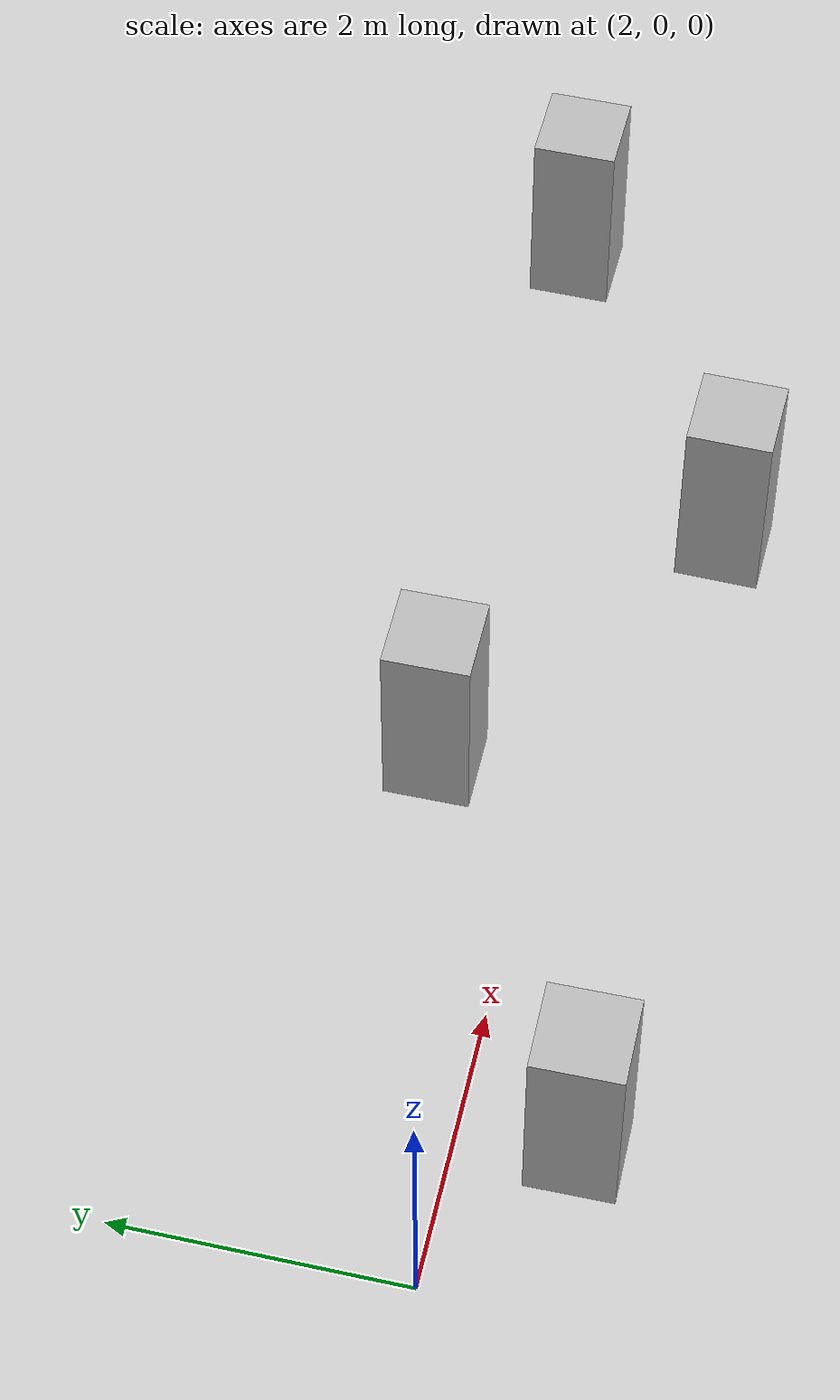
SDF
<?xml version="1.0"?>
<sdf version="1.6">
  <world name="v2-04g-r4-r1-static-s5098">
    <gravity>0 0 -9.81</gravity>
    <physics name="v2_deterministic" type="ode">
      <max_step_size>0.002</max_step_size>
      <real_time_update_rate>500</real_time_update_rate>
    </physics>
    <include>
      <uri>model://sun</uri>
    </include>
    <include>
      <uri>model://ground_plane</uri>
    </include>
    <model name="pillar-1">
      <static>true</static>
      <pose>3.147456997 -0.785469075 0.750000000 0 0 0.009695620</pose>
      <link name="link">
        <collision name="collision">
          <geometry>
            <box>
              <size>0.600000 0.600000 1.500000</size>
            </box>
          </geometry>
        </collision>
        <visual name="visual">
          <geometry>
            <box>
              <size>0.600000 0.600000 1.500000</size>
            </box>
          </geometry>
        </visual>
      </link>
    </model>
    <model name="pillar-2">
      <static>true</static>
      <pose>5.886090700 0.776928850 0.750000000 0 0 0.002274046</pose>
      <link name="link">
        <collision name="collision">
          <geometry>
            <box>
              <size>0.600000 0.600000 1.500000</size>
            </box>
          </geometry>
        </collision>
        <visual name="visual">
          <geometry>
            <box>
              <size>0.600000 0.600000 1.500000</size>
            </box>
          </geometry>
        </visual>
      </link>
    </model>
    <model name="pillar-3">
      <static>true</static>
      <pose>8.211927654 -0.825884092 0.750000000 0 0 -0.022358207</pose>
      <link name="link">
        <collision name="collision">
          <geometry>
            <box>
              <size>0.600000 0.600000 1.500000</size>
            </box>
          </geometry>
        </collision>
        <visual name="visual">
          <geometry>
            <box>
              <size>0.600000 0.600000 1.500000</size>
            </box>
          </geometry>
        </visual>
      </link>
    </model>
    <model name="pillar-4">
      <static>true</static>
      <pose>10.712906411 0.772215954 0.750000000 0 0 -0.015246958</pose>
      <link name="link">
        <collision name="collision">
          <geometry>
            <box>
              <size>0.600000 0.600000 1.500000</size>
            </box>
          </geometry>
        </collision>
        <visual name="visual">
          <geometry>
            <box>
              <size>0.600000 0.600000 1.500000</size>
            </box>
          </geometry>
        </visual>
      </link>
    </model>
  </world>
</sdf>
